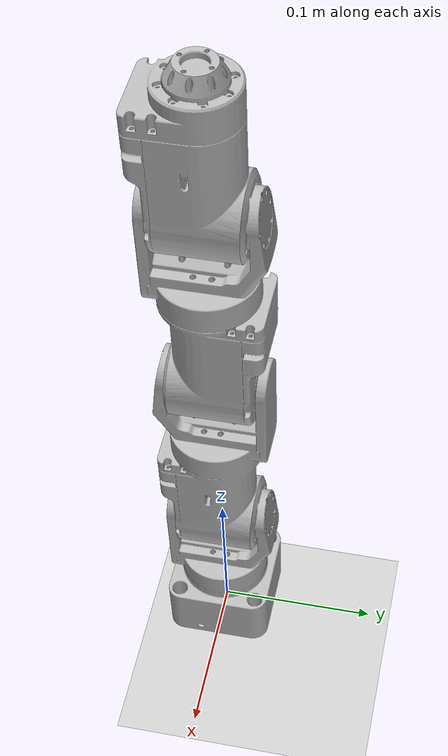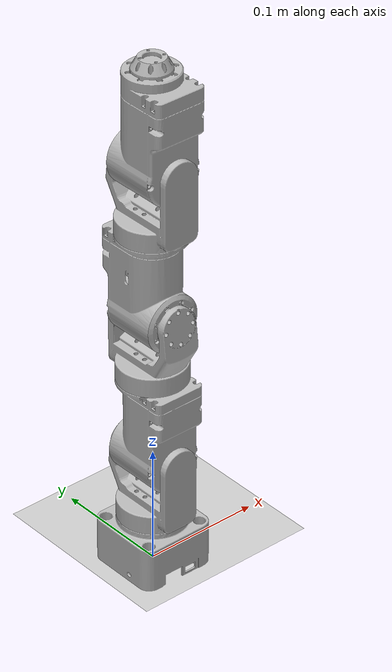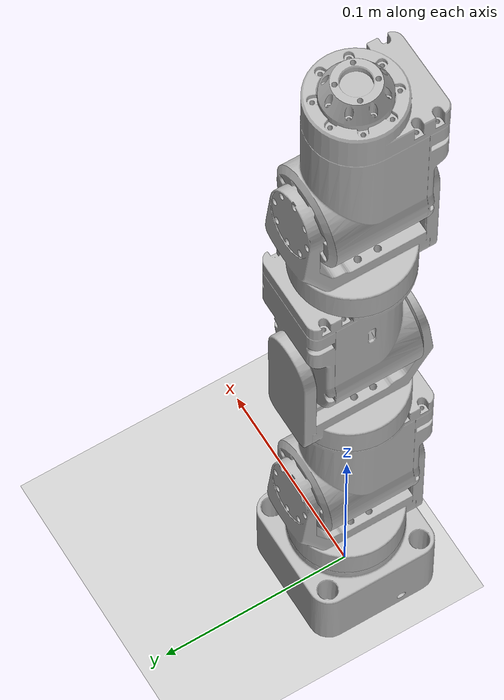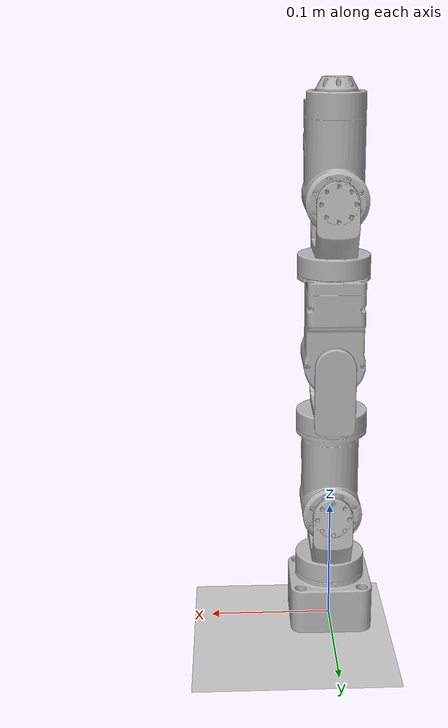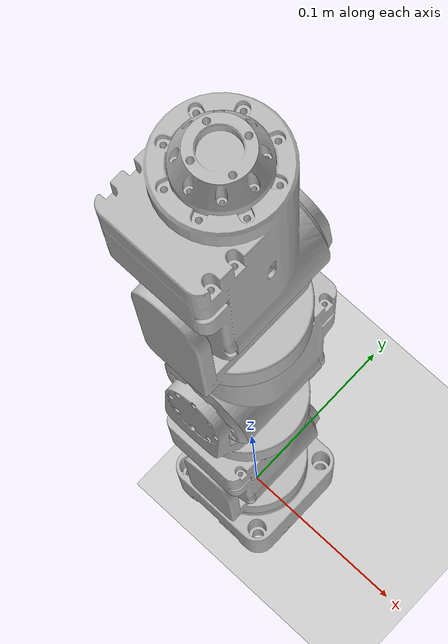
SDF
<?xml version="1.0"?>
<!--
  Gazebo ROS joint state publisher plugin demo

  Try for example:

  ros2 topic echo /demo/joint_states_demo
-->
<sdf version="1.7">
  <world name="default">
    <include>
      <uri>model://ground_plane</uri>
    </include>
    <include>
      <uri>model://sun</uri>
    </include>
    <include>
      <uri>model://mini</uri>

      <plugin name="gazebo_ros_mini_motion"
          filename="/home/fu/ActuatorTest/motion_tennis_ball/plugins/libmini_motion.so">
        <ros>
          <namespace>/demo</namespace>
          <remapping>joint_states:=joint_states_demo</remapping>
        </ros>
        <update_rate>400</update_rate>
        <joint_name>1-joint</joint_name>
        <joint_name>2-joint</joint_name>
        <joint_name>3-joint</joint_name>
        <joint_name>4-joint</joint_name>
        <joint_name>5-joint</joint_name>
        <joint_name>6-joint</joint_name>
        <joint_name>7-joint</joint_name>
      </plugin>

    </include>
  </world>
</sdf>

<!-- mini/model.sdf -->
<sdf version='1.7'>
  <model name='mini'>
    <link name='base_link'>
      <kinematic>true</kinematic>
      <inertial>
        <pose>-3.8e-05 0.000886 0.022609 0 -0 0</pose>
        <mass>0.36622</mass>
        <inertia>
          <ixx>0.0001781</ixx>
          <ixy>-4.9979e-08</ixy>
          <ixz>6.5815e-07</ixz>
          <iyy>0.00019568</iyy>
          <iyz>1.0599e-05</iyz>
          <izz>0.00023967</izz>
        </inertia>
      </inertial>
      <collision name='base_link_collision'>
        <pose>0 0 0 0 -0 0</pose>
        <geometry>
          <mesh>
            <scale>1 1 1</scale>
            <uri>model://mini/meshes/base_link.STL</uri>
          </mesh>
        </geometry>
      </collision>
      <visual name='base_link_visual'>
        <pose>0 0 0 0 -0 0</pose>
        <geometry>
          <mesh>
            <scale>1 1 1</scale>
            <uri>model://mini/meshes/base_link.STL</uri>
          </mesh>
        </geometry>
      </visual>
    </link>
    <joint name='1-joint' type='revolute'>
      <pose relative_to='base_link'>0 0 0.05005 0 -0 0</pose>
      <parent>base_link</parent>
      <child>1_Link</child>
      <axis>
        <xyz>0 0 1</xyz>
        <limit>
          <lower>-2.129</lower>
          <upper>2.129</upper>
          <effort>100</effort>
          <velocity>3.1415</velocity>
        </limit>
        <dynamics>
          <spring_reference>0</spring_reference>
          <spring_stiffness>0</spring_stiffness>
        </dynamics>
      </axis>
    </joint>
    <link name='1_Link'>
      <pose relative_to='1-joint'>0 0 0 0 -0 0</pose>
      <inertial>
        <pose>-0.001015 -0.000538 0.020318 0 -0 0</pose>
        <mass>0.12911</mass>
        <inertia>
          <ixx>6.9329e-05</ixx>
          <ixy>-1.2588e-06</ixy>
          <ixz>-1.8363e-06</ixz>
          <iyy>5.0259e-05</iyy>
          <iyz>-1.575e-05</iyz>
          <izz>5.3192e-05</izz>
        </inertia>
      </inertial>
      <collision name='1_Link_collision'>
        <pose>0 0 0 0 -0 0</pose>
        <geometry>
          <mesh>
            <scale>1 1 1</scale>
            <uri>model://mini/meshes/1_Link.STL</uri>
          </mesh>
        </geometry>
      </collision>
      <visual name='1_Link_visual'>
        <pose>0 0 0 0 -0 0</pose>
        <geometry>
          <mesh>
            <scale>1 1 1</scale>
            <uri>model://mini/meshes/1_Link.STL</uri>
          </mesh>
        </geometry>
      </visual>
    </link>
    <joint name='2-joint' type='revolute'>
      <pose relative_to='1_Link'>0 -5e-05 0.0515 0 -0 0</pose>
      <parent>1_Link</parent>
      <child>2_Link</child>
      <axis>
        <xyz>0 1 0</xyz>
        <limit>
          <lower>-1.989</lower>
          <upper>1.989</upper>
          <effort>100</effort>
          <velocity>3.1415</velocity>
        </limit>
        <dynamics>
          <spring_reference>0</spring_reference>
          <spring_stiffness>0</spring_stiffness>
        </dynamics>
      </axis>
    </joint>
    <link name='2_Link'>
      <pose relative_to='2-joint'>0 0 0 0 -0 0</pose>
      <inertial>
        <pose>-2.6e-05 -0.001519 0.029868 0 -0 0</pose>
        <mass>0.43002</mass>
        <inertia>
          <ixx>0.00016508</ixx>
          <ixy>-5.4877e-07</ixy>
          <ixz>4.3709e-07</ixz>
          <iyy>0.00016006</iyy>
          <iyz>2.8204e-07</iyz>
          <izz>0.00013143</izz>
        </inertia>
      </inertial>
      <collision name='2_Link_collision'>
        <pose>0 0 0 0 -0 0</pose>
        <geometry>
          <mesh>
            <scale>1 1 1</scale>
            <uri>model://mini/meshes/2_Link.STL</uri>
          </mesh>
        </geometry>
      </collision>
      <visual name='2_Link_visual'>
        <pose>0 0 0 0 -0 0</pose>
        <geometry>
          <mesh>
            <scale>1 1 1</scale>
            <uri>model://mini/meshes/2_Link.STL</uri>
          </mesh>
        </geometry>
      </visual>
    </link>
    <joint name='3-joint' type='revolute'>
      <pose relative_to='2_Link'>0 0 0.07555 0 -0 0</pose>
      <parent>2_Link</parent>
      <child>3_Link</child>
      <axis>
        <xyz>0 0 1</xyz>
        <limit>
          <lower>-2.39</lower>
          <upper>2.39</upper>
          <effort>100</effort>
          <velocity>3.1415</velocity>
        </limit>
        <dynamics>
          <spring_reference>0</spring_reference>
          <spring_stiffness>0</spring_stiffness>
        </dynamics>
      </axis>
    </joint>
    <link name='3_Link'>
      <pose relative_to='3-joint'>0 0 0 0 -0 0</pose>
      <inertial>
        <pose>0.001015 0.000538 0.020318 0 -0 0</pose>
        <mass>0.12911</mass>
        <inertia>
          <ixx>6.93287e-05</ixx>
          <ixy>-1.25883e-06</ixy>
          <ixz>1.83634e-06</ixz>
          <iyy>5.02594e-05</iyy>
          <iyz>1.57497e-05</iyz>
          <izz>5.31923e-05</izz>
        </inertia>
      </inertial>
      <collision name='3_Link_collision'>
        <pose>0 0 0 0 -0 0</pose>
        <geometry>
          <mesh>
            <scale>1 1 1</scale>
            <uri>model://mini/meshes/3_Link.STL</uri>
          </mesh>
        </geometry>
      </collision>
      <visual name='3_Link_visual'>
        <pose>0 0 0 0 -0 0</pose>
        <geometry>
          <mesh>
            <scale>1 1 1</scale>
            <uri>model://mini/meshes/3_Link.STL</uri>
          </mesh>
        </geometry>
      </visual>
    </link>
    <joint name='4-joint' type='revolute'>
      <pose relative_to='3_Link'>0 5e-05 0.0515 0 0 -3.14159</pose>
      <parent>3_Link</parent>
      <child>4_Link</child>
      <axis>
        <xyz>0 1 0</xyz>
        <limit>
          <lower>-1.553</lower>
          <upper>1.553</upper>
          <effort>100</effort>
          <velocity>3.1415</velocity>
        </limit>
        <dynamics>
          <spring_reference>0</spring_reference>
          <spring_stiffness>0</spring_stiffness>
        </dynamics>
      </axis>
    </joint>
    <link name='4_Link'>
      <pose relative_to='4-joint'>0 0 0 0 -0 0</pose>
      <inertial>
        <pose>-2.6e-05 -0.001519 0.029868 0 -0 0</pose>
        <mass>0.430025</mass>
        <inertia>
          <ixx>0.000165077</ixx>
          <ixy>-5.48765e-07</ixy>
          <ixz>4.37089e-07</ixz>
          <iyy>0.000160058</iyy>
          <iyz>2.82038e-07</iyz>
          <izz>0.000131427</izz>
        </inertia>
      </inertial>
      <collision name='4_Link_collision'>
        <pose>0 0 0 0 -0 0</pose>
        <geometry>
          <mesh>
            <scale>1 1 1</scale>
            <uri>model://mini/meshes/4_Link.STL</uri>
          </mesh>
        </geometry>
      </collision>
      <visual name='4_Link_visual'>
        <pose>0 0 0 0 -0 0</pose>
        <geometry>
          <mesh>
            <scale>1 1 1</scale>
            <uri>model://mini/meshes/4_Link.STL</uri>
          </mesh>
        </geometry>
      </visual>
    </link>
    <joint name='5-joint' type='revolute'>
      <pose relative_to='4_Link'>0 0 0.07555 0 0 -3.14159</pose>
      <parent>4_Link</parent>
      <child>5_Link</child>
      <axis>
        <xyz>0 0 1</xyz>
        <limit>
          <lower>-2.39</lower>
          <upper>2.39</upper>
          <effort>100</effort>
          <velocity>3.1415</velocity>
        </limit>
        <dynamics>
          <spring_reference>0</spring_reference>
          <spring_stiffness>0</spring_stiffness>
        </dynamics>
      </axis>
    </joint>
    <link name='5_Link'>
      <pose relative_to='5-joint'>0 0 0 0 -0 0</pose>
      <inertial>
        <pose>-0.001015 -0.000538 0.020318 0 -0 0</pose>
        <mass>0.12911</mass>
        <inertia>
          <ixx>6.9329e-05</ixx>
          <ixy>-1.2588e-06</ixy>
          <ixz>-1.8363e-06</ixz>
          <iyy>5.0259e-05</iyy>
          <iyz>-1.575e-05</iyz>
          <izz>5.3192e-05</izz>
        </inertia>
      </inertial>
      <collision name='5_Link_collision'>
        <pose>0 0 0 0 -0 0</pose>
        <geometry>
          <mesh>
            <scale>1 1 1</scale>
            <uri>model://mini/meshes/5_Link.STL</uri>
          </mesh>
        </geometry>
      </collision>
      <visual name='5_Link_visual'>
        <pose>0 0 0 0 -0 0</pose>
        <geometry>
          <mesh>
            <scale>1 1 1</scale>
            <uri>model://mini/meshes/5_Link.STL</uri>
          </mesh>
        </geometry>
      </visual>
    </link>
    <joint name='6-joint' type='revolute'>
      <pose relative_to='5_Link'>0 -5e-05 0.0515 0 -0 0</pose>
      <parent>5_Link</parent>
      <child>6_Link</child>
      <axis>
        <xyz>0 1 0</xyz>
        <limit>
          <lower>-1.553</lower>
          <upper>1.553</upper>
          <effort>100</effort>
          <velocity>3.1415</velocity>
        </limit>
        <dynamics>
          <spring_reference>0</spring_reference>
          <spring_stiffness>0</spring_stiffness>
        </dynamics>
      </axis>
    </joint>
    <link name='6_Link'>
      <pose relative_to='6-joint'>0 0 0 0 -0 0</pose>
      <inertial>
        <pose>-7.2e-05 -0.001812 0.029412 0 -0 0</pose>
        <mass>0.42484</mass>
        <inertia>
          <ixx>0.00016202</ixx>
          <ixy>-4.1552e-07</ixy>
          <ixz>5.1546e-07</ixz>
          <iyy>0.00015783</iyy>
          <iyz>7.8453e-07</iyz>
          <izz>0.00012676</izz>
        </inertia>
      </inertial>
      <collision name='6_Link_collision'>
        <pose>0 0 0 0 -0 0</pose>
        <geometry>
          <mesh>
            <scale>1 1 1</scale>
            <uri>model://mini/meshes/6_Link.STL</uri>
          </mesh>
        </geometry>
      </collision>
      <visual name='6_Link_visual'>
        <pose>0 0 0 0 -0 0</pose>
        <geometry>
          <mesh>
            <scale>1 1 1</scale>
            <uri>model://mini/meshes/6_Link.STL</uri>
          </mesh>
        </geometry>
      </visual>
    </link>
    <joint name='7-joint' type='revolute'>
      <pose relative_to='6_Link'>0 0 0.07555 0 -0 0</pose>
      <parent>6_Link</parent>
      <child>7_Link</child>
      <axis>
        <xyz>0 0 1</xyz>
        <limit>
          <lower>-6.283</lower>
          <upper>6.283</upper>
          <effort>100</effort>
          <velocity>3.1415</velocity>
        </limit>
        <dynamics>
          <spring_reference>0</spring_reference>
          <spring_stiffness>0</spring_stiffness>
        </dynamics>
      </axis>
    </joint>
    <link name='7_Link'>
      <pose relative_to='7-joint'>0 0 0 0 -0 0</pose>
      <inertial>
        <pose>-0 0 0.006088 0 -0 0</pose>
        <mass>0.016126</mass>
        <inertia>
          <ixx>1.1995e-06</ixx>
          <ixy>-2.9623e-11</ixy>
          <ixz>5.3766e-12</ixz>
          <iyy>1.1995e-06</iyy>
          <iyz>-8.6948e-12</iyz>
          <izz>2.0263e-06</izz>
        </inertia>
      </inertial>
      <collision name='7_Link_collision'>
        <pose>0 0 0 0 -0 0</pose>
        <geometry>
          <mesh>
            <scale>1 1 1</scale>
            <uri>model://mini/meshes/7_Link.STL</uri>
          </mesh>
        </geometry>
      </collision>
      <visual name='7_Link_visual'>
        <pose>0 0 0 0 -0 0</pose>
        <geometry>
          <mesh>
            <scale>1 1 1</scale>
            <uri>model://mini/meshes/7_Link.STL</uri>
          </mesh>
        </geometry>
      </visual>
    </link>
  </model>
</sdf>
